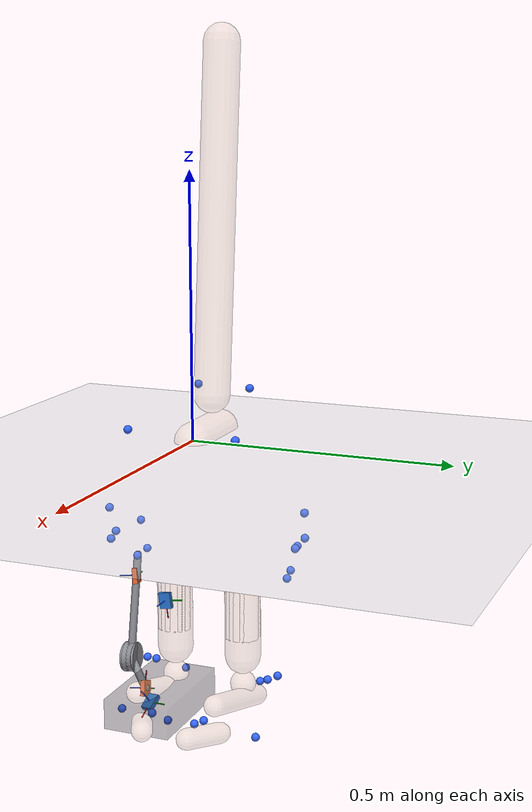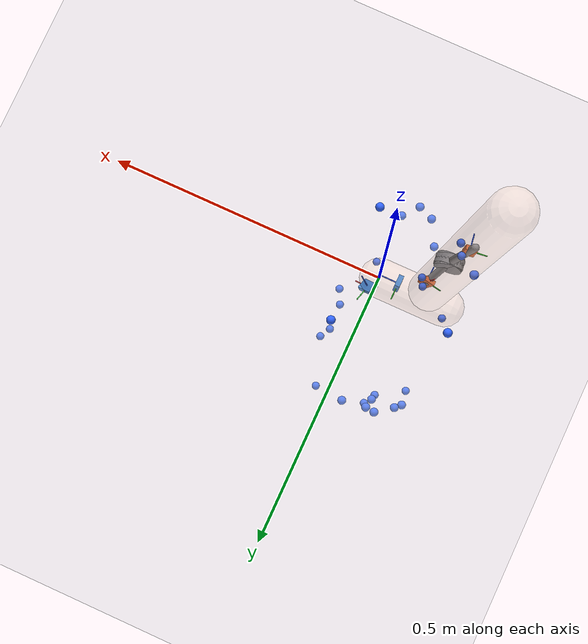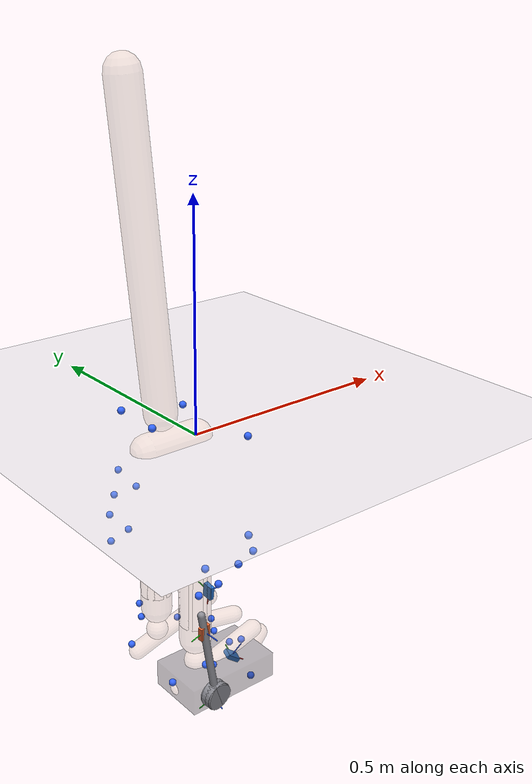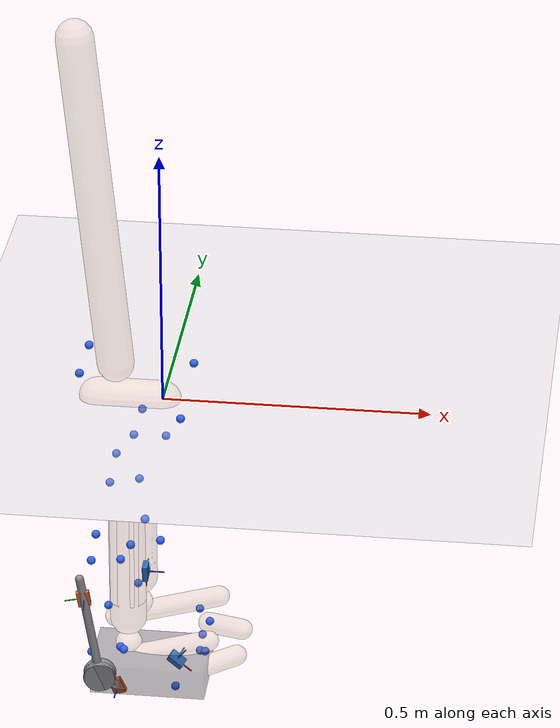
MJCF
<mujoco model="AB11">
  <compiler angle="radian" autolimits="true"/>
  <option timestep="0.005" gravity="0 0 -9.81"><flag contact="disable"/></option>
  <visual><global offwidth="1600" offheight="1200"/>
    <headlight ambient="0.55 0.55 0.55" diffuse="0.6 0.6 0.6"/></visual>
  <default><joint limited="false" damping="0"/><geom contype="0" conaffinity="0"/></default>
  <asset>
    <texture name="grid" type="2d" builtin="checker" rgb1="0.75 0.77 0.8" rgb2="0.85 0.87 0.9" width="512" height="512"/>
    <material name="grid" texture="grid" texrepeat="2 2" texuniform="true"/>
    <material name="skin" rgba="0.85 0.72 0.62 0.28"/>
  </asset>
  <worldbody>
    <light pos="0 0 4" dir="0 0 -1"/>
    <geom name="floor" type="plane" size="0 0 0.05" material="grid"/>
    <body name="pelvis" pos="0 0 0" quat="1 0 0 0">
      <joint name="pelvis_tx" type="slide" axis="1 0 0"/>
      <joint name="pelvis_ty" type="slide" axis="0 0 1"/>
      <joint name="pelvis_tz" type="slide" axis="0 -1 0"/>
      <joint name="pelvis_tilt" type="hinge" axis="0 -1 0"/>
      <joint name="pelvis_list" type="hinge" axis="1 0 0"/>
      <joint name="pelvis_rotation" type="hinge" axis="0 0 1"/>
      <inertial pos="-0.061201244 0 0" mass="12.6039" diaginertia="0.12603888 0.12603888 0.12603888"/>
      <geom type="capsule" fromto="0 0 0 -0.12240249 0 0" size="0.035" material="skin" mass="0"/>
      <site name="m_R_ASIS" pos="0.048936453 -0.10960037 0.023121593" size="0.008" rgba="0.2 0.4 1 1" group="2"/>
      <site name="m_L_ASIS" pos="0.044424087 0.10541173 0.020390817" size="0.008" rgba="0.2 0.4 1 1" group="2"/>
      <site name="m_L_PSIS" pos="-0.1454088 0.053619719 0.075536089" size="0.008" rgba="0.2 0.4 1 1" group="2"/>
      <site name="m_R_PSIS" pos="-0.14596148 -0.05526812 0.075868356" size="0.008" rgba="0.2 0.4 1 1" group="2"/>
      <body name="femur_r" pos="-0.061201244 -0.072281526 -0.057219268" quat="1 0 0 0">
        <joint name="hip_flexion_r" type="hinge" axis="0 -1 0"/>
        <joint name="hip_adduction_r" type="hinge" axis="1 0 0"/>
        <joint name="hip_rotation_r" type="hinge" axis="0 0 1"/>
        <inertial pos="0 0 -0.16983119" mass="9.95447" diaginertia="0.099544712 0.099544712 0.099544712"/>
        <geom type="capsule" fromto="0 0 0 0 0 -0.33966237" size="0.035" material="skin" mass="0"/>
        <site name="m_R_Thigh_Upper" pos="0.052751042 -0.11138745 -0.094199915" size="0.008" rgba="0.2 0.4 1 1" group="2"/>
        <site name="m_R_Thigh_Front" pos="0.078444144 -0.095782994 -0.14768847" size="0.008" rgba="0.2 0.4 1 1" group="2"/>
        <site name="m_R_Thigh_Rear" pos="0.02541492 -0.11365941 -0.15002444" size="0.008" rgba="0.2 0.4 1 1" group="2"/>
        <site name="m_R_Knee_Lat" pos="8.3187958e-05 -0.062828074 -0.41461082" size="0.008" rgba="0.2 0.4 1 1" group="2"/>
        <body name="tibia_r" pos="0 0 0" quat="1 0 0 0">
<geom name="gt_shank_axis_x" type="capsule" size="0.0012" fromto="0.03510 -0.00290 -0.27520 0.03542 0.00194 -0.30986" rgba="1 0.1 0.1 1" contype="0" conaffinity="0" mass="0"/>
<geom name="gt_shank_axis_y" type="capsule" size="0.0012" fromto="0.03510 -0.00290 -0.27520 0.03517 0.03176 -0.27036" rgba="0.1 0.8 0.1 1" contype="0" conaffinity="0" mass="0"/>
<geom name="gt_shank_axis_z" type="capsule" size="0.0012" fromto="0.03510 -0.00290 -0.27520 0.07010 -0.00302 -0.27489" rgba="0.1 0.3 1 1" contype="0" conaffinity="0" mass="0"/>
<geom name="exo_shank_axis_x" type="capsule" size="0.0012" fromto="-0.06463 -0.11780 -0.27096 -0.06878 -0.12253 -0.23653" rgba="1 0.1 0.1 1" contype="0" conaffinity="0" mass="0"/>
<geom name="exo_shank_axis_y" type="capsule" size="0.0012" fromto="-0.06463 -0.11780 -0.27096 -0.09893 -0.12283 -0.27578" rgba="0.1 0.8 0.1 1" contype="0" conaffinity="0" mass="0"/>
<geom name="exo_shank_axis_z" type="capsule" size="0.0012" fromto="-0.06463 -0.11780 -0.27096 -0.05903 -0.15212 -0.27499" rgba="0.1 0.3 1 1" contype="0" conaffinity="0" mass="0"/>
<geom name="encoder_shank" type="cylinder" size="0.03 0.012" fromto="-0.03531 -0.13121 -0.43773 -0.03949 -0.10759 -0.43707" rgba="0.55 0.55 0.58 1" contype="0" conaffinity="0" mass="0"/>
<geom name="strut_shank" type="capsule" size="0.008" fromto="-0.03740 -0.11940 -0.43740 -0.07143 -0.11740 -0.22934" rgba="0.55 0.55 0.58 1" contype="0" conaffinity="0" mass="0"/>
          <joint name="knee_r_translation1" type="slide" axis="1 0 0"/>
          <joint name="knee_r_translation2" type="slide" axis="0 0 1"/>
          <joint name="knee_angle_r" type="hinge" axis="0 -1 0"/>
          <inertial pos="0 0 -0.18992679" mass="3.96781" diaginertia="0.039678115 0.039678115 0.039678115"/>
          <geom type="capsule" fromto="0 0 0 0 0 -0.37985358" size="0.035" material="skin" mass="0"/>
          <site name="m_R_Shank_Upper" pos="-0.042580495 -0.093266895 -0.14469274" size="0.008" rgba="0.2 0.4 1 1" group="2"/>
          <site name="m_R_Shank_Front" pos="0.00060809651 -0.080438524 -0.203919" size="0.008" rgba="0.2 0.4 1 1" group="2"/>
          <site name="m_R_Shank_Rear" pos="-0.05382057 -0.086382779 -0.20648568" size="0.008" rgba="0.2 0.4 1 1" group="2"/>
          <site name="m_R_Ankle_Lat" pos="-0.0084761744 -0.0474634 -0.41917348" size="0.008" rgba="0.2 0.4 1 1" group="2"/>
          <site name="gt_shank_imu" type="box" size="0.016 0.012 0.005" pos="0.0351 -0.0029 -0.2752" quat="0.70858487 0.050007601 0.70220633 0.048093494" rgba="0.16 0.47 0.84 1" group="1"/>
          <site name="exo_shank_imu" type="box" size="0.016 0.012 0.005" pos="-0.064626 -0.117803 -0.270956" quat="0.39450097 0.53385997 -0.52208934 0.53552333" rgba="0.92 0.41 0.20 1" group="1"/>
          <body name="talus_r" pos="0 0 -0.43743181" quat="1 0 0 0">
            <joint name="ankle_angle_r" type="hinge" axis="-0.10501355 -0.97912632 -0.17402245"/>
            <inertial pos="0 0 0" mass="0.107021" diaginertia="0.0010702121 0.0010702121 0.0010702121"/>
            <geom type="sphere" size="0.025" material="skin" mass="0"/>
            <body name="calcn_r" pos="-0.049612906 -0.0080568836 -0.042675034" quat="1 0 0 0">
<geom name="gt_foot_axis_x" type="capsule" size="0.0012" fromto="0.14270 -0.00230 0.01580 0.17070 -0.00722 -0.00461" rgba="1 0.1 0.1 1" contype="0" conaffinity="0" mass="0"/>
<geom name="gt_foot_axis_y" type="capsule" size="0.0012" fromto="0.14270 -0.00230 0.01580 0.15197 0.03113 0.02046" rgba="0.1 0.8 0.1 1" contype="0" conaffinity="0" mass="0"/>
<geom name="gt_foot_axis_z" type="capsule" size="0.0012" fromto="0.14270 -0.00230 0.01580 0.16154 -0.01144 0.04385" rgba="0.1 0.3 1 1" contype="0" conaffinity="0" mass="0"/>
<geom name="exo_foot_axis_x" type="capsule" size="0.0012" fromto="0.03801 -0.06712 -0.00867 0.02487 -0.07137 0.02349" rgba="1 0.1 0.1 1" contype="0" conaffinity="0" mass="0"/>
<geom name="exo_foot_axis_y" type="capsule" size="0.0012" fromto="0.03801 -0.06712 -0.00867 0.00559 -0.06435 -0.02155" rgba="0.1 0.8 0.1 1" contype="0" conaffinity="0" mass="0"/>
<geom name="exo_foot_axis_z" type="capsule" size="0.0012" fromto="0.03801 -0.06712 -0.00867 0.03704 -0.10175 -0.01365" rgba="0.1 0.3 1 1" contype="0" conaffinity="0" mass="0"/>
<geom name="encoder_foot" type="cylinder" size="0.03 0.012" fromto="0.01248 -0.12335 0.04168 0.01192 -0.09945 0.04372" rgba="0.55 0.55 0.58 1" contype="0" conaffinity="0" mass="0"/>
<geom name="strut_foot" type="capsule" size="0.008" fromto="0.01220 -0.11140 0.04270 0.03801 -0.06712 -0.00867" rgba="0.55 0.55 0.58 1" contype="0" conaffinity="0" mass="0"/>
<geom name="shoe" type="box" pos="0.09488 -0.00429 0.00513" size="0.10859 0.06728 0.03000" rgba="0.15 0.15 0.18 0.35" contype="0" conaffinity="0" mass="0"/>
              <joint name="subtalar_angle_r" type="hinge" axis="0.78717961 0.12094949 0.60474746"/>
              <inertial pos="0.10167379 0 0.030502136" mass="1.33777" diaginertia="0.013377652 0.013377652 0.013377652"/>
              <geom type="capsule" fromto="0 0 0 0.20334757 0 0.061004272" size="0.02" material="skin" mass="0"/>
              <site name="m_R_Heel" pos="-0.020713559 -0.0040161753 0.02232455" size="0.008" rgba="0.2 0.4 1 1" group="2"/>
              <site name="m_R_Toe_Lat" pos="0.14859023 -0.061846743 -0.0048650342" size="0.008" rgba="0.2 0.4 1 1" group="2"/>
              <site name="m_R_Toe_Med" pos="0.18008326 0.052711611 0.0037480969" size="0.008" rgba="0.2 0.4 1 1" group="2"/>
              <site name="m_R_Toe_Tip" pos="0.19346821 0.026422144 0.019797309" size="0.008" rgba="0.2 0.4 1 1" group="2"/>
              <site name="gt_foot_imu" type="box" size="0.016 0.012 0.005" pos="0.1427 -0.0023 0.0158" quat="0.94293749 0.10453797 0.29728991 -0.10751475" rgba="0.16 0.47 0.84 1" group="1"/>
              <site name="exo_foot_imu" type="box" size="0.016 0.012 0.005" pos="0.038014 -0.06712 -0.008666" quat="-0.37458711 -0.41462669 0.63183781 -0.53716867" rgba="0.92 0.41 0.20 1" group="1"/>
              <body name="toes_r" pos="0.18179273 -0.0010980769 -0.0020334757" quat="1 0 0 0">
                <joint name="mtp_angle_r" type="hinge" axis="-0.5809544 -0.81393611 0"/>
                <inertial pos="0.03517913 0.017792913 0.0061004272" mass="0.231808" diaginertia="0.0023180795 0.0023180795 0.0023180795"/>
                <geom type="capsule" fromto="0 0 0 0.070358261 0.035585826 0.012200854" size="0.02" material="skin" mass="0"/>
              </body>
            </body>
          </body>
        </body>
      </body>
      <body name="femur_l" pos="-0.061201244 0.072281526 -0.057219268" quat="1 0 0 0">
        <joint name="hip_flexion_l" type="hinge" axis="0 -1 0"/>
        <joint name="hip_adduction_l" type="hinge" axis="-1 0 0"/>
        <joint name="hip_rotation_l" type="hinge" axis="0 0 -1"/>
        <inertial pos="0 0 -0.16983119" mass="9.95447" diaginertia="0.099544712 0.099544712 0.099544712"/>
        <geom type="capsule" fromto="0 0 0 0 0 -0.33966237" size="0.035" material="skin" mass="0"/>
        <site name="m_L_Thigh_Upper" pos="-0.0082576639 0.124067 -0.0803325" size="0.008" rgba="0.2 0.4 1 1" group="2"/>
        <site name="m_L_Thigh_Front" pos="0.037115125 0.1231811 -0.13617482" size="0.008" rgba="0.2 0.4 1 1" group="2"/>
        <site name="m_L_Thigh_Rear" pos="-0.024949283 0.11865743 -0.13524856" size="0.008" rgba="0.2 0.4 1 1" group="2"/>
        <site name="m_L_Knee_Lat" pos="0.0019590685 0.073530826 -0.41013477" size="0.008" rgba="0.2 0.4 1 1" group="2"/>
        <body name="tibia_l" pos="0 0 0" quat="1 0 0 0">
          <joint name="knee_l_translation1" type="slide" axis="1 0 0"/>
          <joint name="knee_l_translation2" type="slide" axis="0 0 1"/>
          <joint name="knee_angle_l" type="hinge" axis="0 -1 0"/>
          <inertial pos="0 0 -0.18992679" mass="3.96781" diaginertia="0.039678115 0.039678115 0.039678115"/>
          <geom type="capsule" fromto="0 0 0 0 0 -0.37985358" size="0.035" material="skin" mass="0"/>
          <site name="m_L_Shank_Upper" pos="-0.055419677 0.091723986 -0.16369712" size="0.008" rgba="0.2 0.4 1 1" group="2"/>
          <site name="m_L_Shank_Front" pos="-0.010650331 0.088052472 -0.21472464" size="0.008" rgba="0.2 0.4 1 1" group="2"/>
          <site name="m_L_Shank_Rear" pos="-0.066233053 0.073667658 -0.21848681" size="0.008" rgba="0.2 0.4 1 1" group="2"/>
          <site name="m_L_Ankle_Lat" pos="-0.010599875 0.047663019 -0.42715416" size="0.008" rgba="0.2 0.4 1 1" group="2"/>
          <body name="talus_l" pos="0 0 -0.43743181" quat="1 0 0 0">
            <joint name="ankle_angle_l" type="hinge" axis="0.10501355 -0.97912632 0.17402245"/>
            <inertial pos="0 0 0" mass="0.107021" diaginertia="0.0010702121 0.0010702121 0.0010702121"/>
            <geom type="sphere" size="0.025" material="skin" mass="0"/>
            <body name="calcn_l" pos="-0.049612906 0.0080568836 -0.042675034" quat="1 0 0 0">
              <joint name="subtalar_angle_l" type="hinge" axis="-0.78717961 0.12094949 -0.60474746"/>
              <inertial pos="0.10167379 0 0.030502136" mass="1.33777" diaginertia="0.013377652 0.013377652 0.013377652"/>
              <geom type="capsule" fromto="0 0 0 0.20334757 0 0.061004272" size="0.02" material="skin" mass="0"/>
              <site name="m_L_Heel" pos="-0.014171201 0.0015840368 0.022304634" size="0.008" rgba="0.2 0.4 1 1" group="2"/>
              <site name="m_L_Toe_Lat" pos="0.15634028 0.062743871 -0.011517099" size="0.008" rgba="0.2 0.4 1 1" group="2"/>
              <site name="m_L_Toe_Med" pos="0.17763675 -0.053491491 0.0046613457" size="0.008" rgba="0.2 0.4 1 1" group="2"/>
              <site name="m_L_Toe_Tip" pos="0.18849883 -0.029088747 0.020246697" size="0.008" rgba="0.2 0.4 1 1" group="2"/>
              <body name="toes_l" pos="0.18179273 0.0010980769 -0.0020334757" quat="1 0 0 0">
                <joint name="mtp_angle_l" type="hinge" axis="0.5809544 -0.81393611 0"/>
                <inertial pos="0.03517913 -0.017792913 0.0061004272" mass="0.231808" diaginertia="0.0023180795 0.0023180795 0.0023180795"/>
                <geom type="capsule" fromto="0 0 0 0.070358261 -0.035585826 0.012200854" size="0.02" material="skin" mass="0"/>
              </body>
            </body>
          </body>
        </body>
      </body>
      <body name="torso" pos="-0.087170655 0 0.070550232" quat="1 0 0 0">
        <joint name="lumbar_extension" type="hinge" axis="0 -1 0"/>
        <joint name="lumbar_bending" type="hinge" axis="1 0 0"/>
        <joint name="lumbar_rotation" type="hinge" axis="0 0 1"/>
        <inertial pos="-0.030789215 0 0.32841829" mass="36.6404" diaginertia="0.36640425 0.36640425 0.36640425"/>
        <geom type="capsule" fromto="0 0 0 -0.061578429 0 0.65683658" size="0.035" material="skin" mass="0"/>
      </body>
    </body>
  </worldbody>
  <sensor>
<accelerometer name="gt_foot_imu_acc" site="gt_foot_imu"/>
<gyro name="gt_foot_imu_gyr" site="gt_foot_imu"/>
<accelerometer name="exo_foot_imu_acc" site="exo_foot_imu"/>
<gyro name="exo_foot_imu_gyr" site="exo_foot_imu"/>
<accelerometer name="gt_shank_imu_acc" site="gt_shank_imu"/>
<gyro name="gt_shank_imu_gyr" site="gt_shank_imu"/>
<accelerometer name="exo_shank_imu_acc" site="exo_shank_imu"/>
<gyro name="exo_shank_imu_gyr" site="exo_shank_imu"/>
</sensor>
</mujoco>
